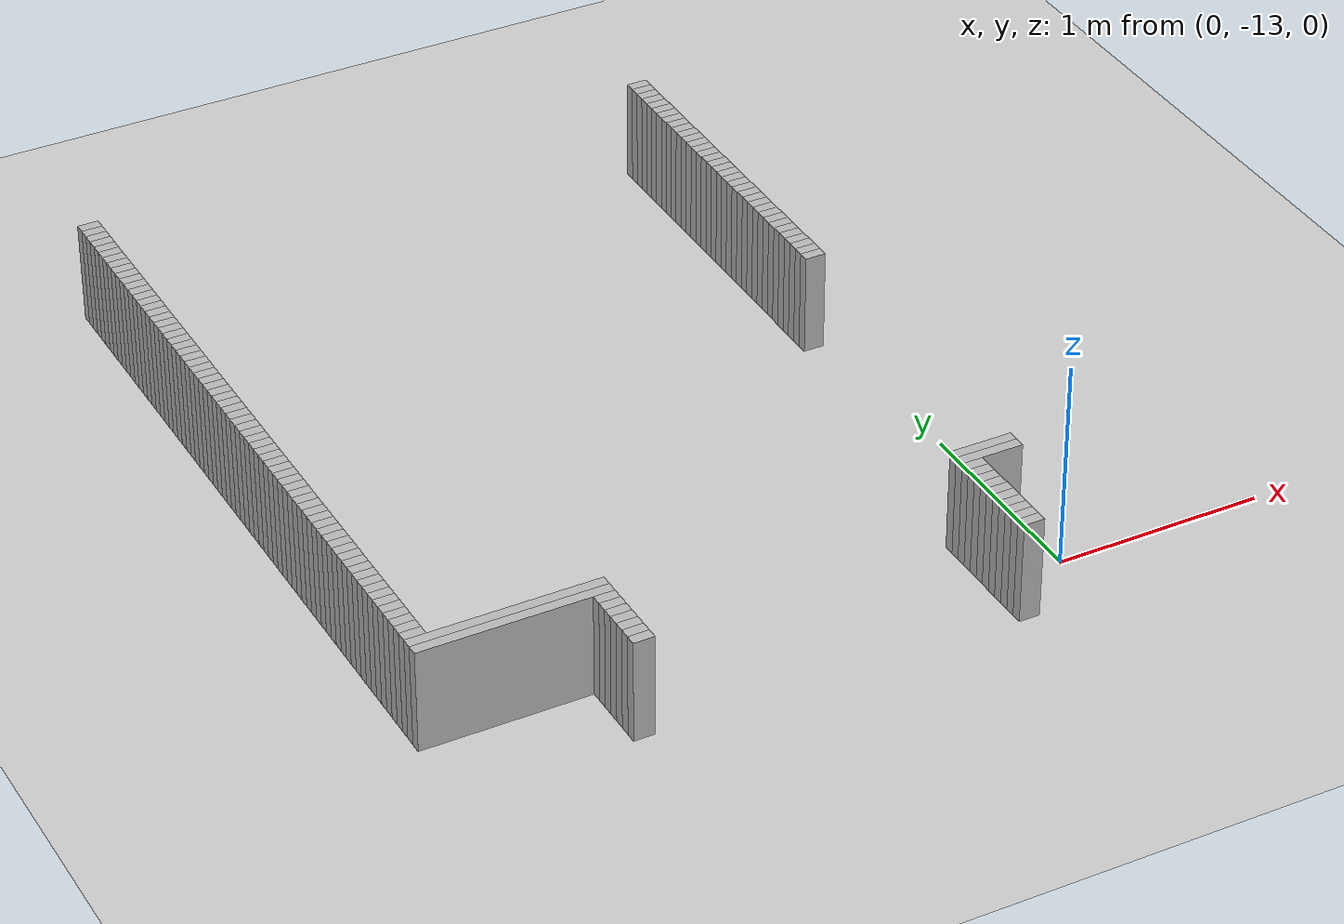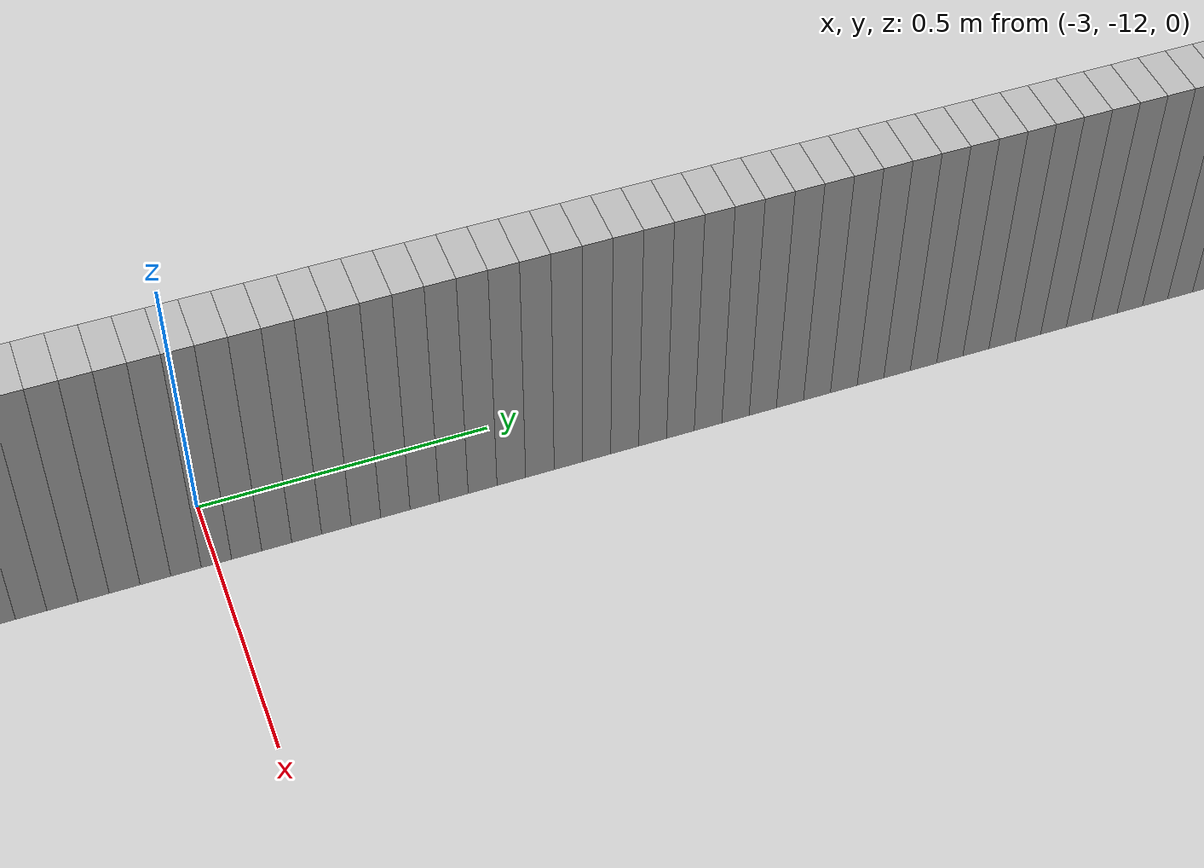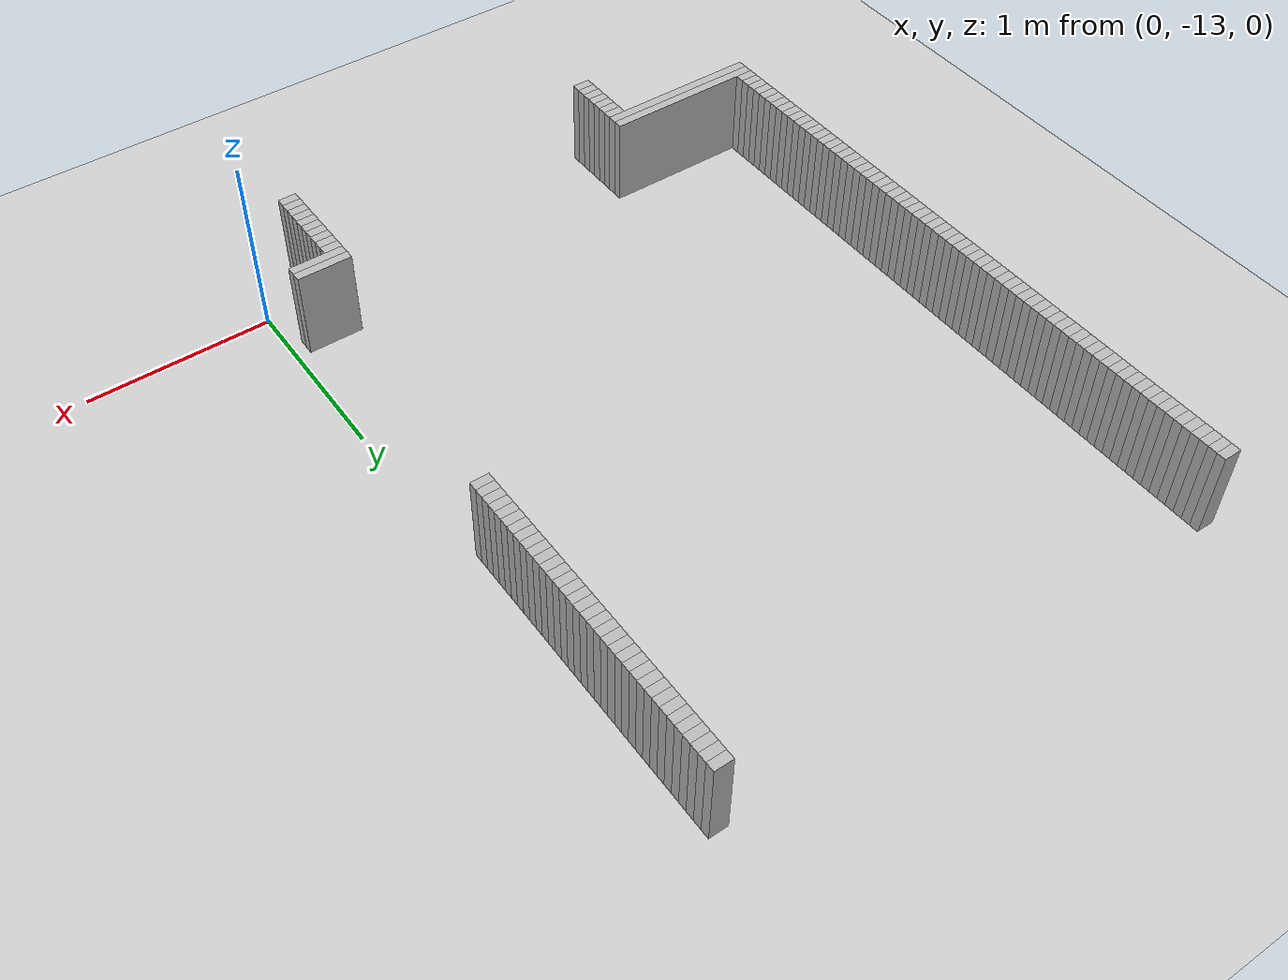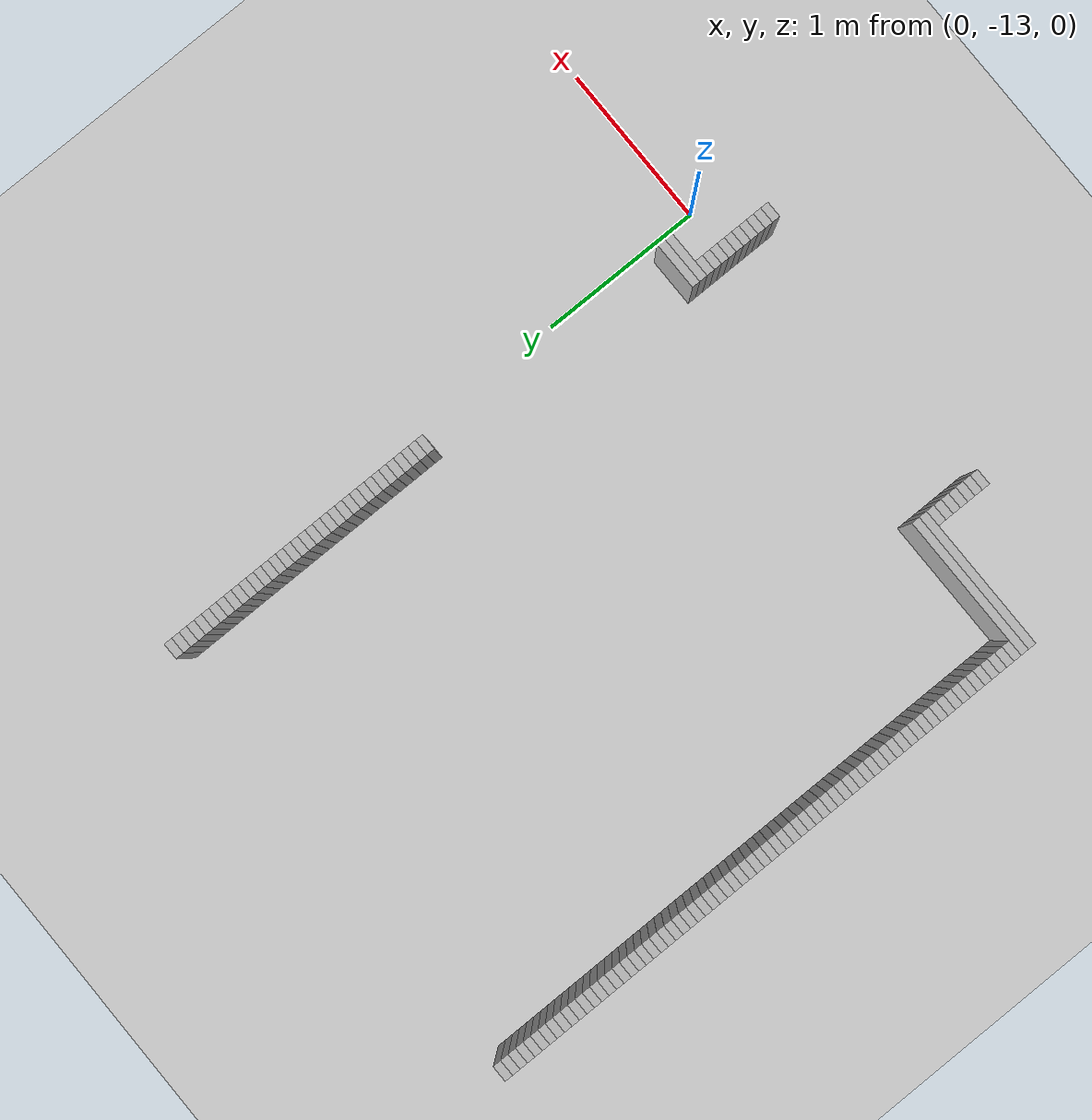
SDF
<sdf version="1.6">
 <world name="optimized_map_world">
  <include><uri>model://sun</uri></include>
  <include><uri>model://ground_plane</uri></include>
  <model name="obstacle_774">
   <static>true</static>
   <link name="link">
    <collision name="collision"><geometry><box><size>0.1 0.05 0.5</size></box></geometry></collision>
    <visual name="visual"><geometry><box><size>0.1 0.05 0.5</size></box></geometry></visual>
   </link>
   <pose>-2.924999999999999 -9.3 0.25 0 0 0</pose>
  </model>
  <model name="obstacle_778">
   <static>true</static>
   <link name="link">
    <collision name="collision"><geometry><box><size>0.1 0.05 0.5</size></box></geometry></collision>
    <visual name="visual"><geometry><box><size>0.1 0.05 0.5</size></box></geometry></visual>
   </link>
   <pose>-2.924999999999999 -9.35 0.25 0 0 0</pose>
  </model>
  <model name="obstacle_779">
   <static>true</static>
   <link name="link">
    <collision name="collision"><geometry><box><size>0.1 0.05 0.5</size></box></geometry></collision>
    <visual name="visual"><geometry><box><size>0.1 0.05 0.5</size></box></geometry></visual>
   </link>
   <pose>-0.125 -9.35 0.25 0 0 0</pose>
  </model>
  <model name="obstacle_782">
   <static>true</static>
   <link name="link">
    <collision name="collision"><geometry><box><size>0.1 0.05 0.5</size></box></geometry></collision>
    <visual name="visual"><geometry><box><size>0.1 0.05 0.5</size></box></geometry></visual>
   </link>
   <pose>-2.924999999999999 -9.4 0.25 0 0 0</pose>
  </model>
  <model name="obstacle_783">
   <static>true</static>
   <link name="link">
    <collision name="collision"><geometry><box><size>0.1 0.05 0.5</size></box></geometry></collision>
    <visual name="visual"><geometry><box><size>0.1 0.05 0.5</size></box></geometry></visual>
   </link>
   <pose>-0.125 -9.4 0.25 0 0 0</pose>
  </model>
  <model name="obstacle_786">
   <static>true</static>
   <link name="link">
    <collision name="collision"><geometry><box><size>0.1 0.05 0.5</size></box></geometry></collision>
    <visual name="visual"><geometry><box><size>0.1 0.05 0.5</size></box></geometry></visual>
   </link>
   <pose>-2.924999999999999 -9.45 0.25 0 0 0</pose>
  </model>
  <model name="obstacle_787">
   <static>true</static>
   <link name="link">
    <collision name="collision"><geometry><box><size>0.1 0.05 0.5</size></box></geometry></collision>
    <visual name="visual"><geometry><box><size>0.1 0.05 0.5</size></box></geometry></visual>
   </link>
   <pose>-0.125 -9.45 0.25 0 0 0</pose>
  </model>
  <model name="obstacle_790">
   <static>true</static>
   <link name="link">
    <collision name="collision"><geometry><box><size>0.1 0.05 0.5</size></box></geometry></collision>
    <visual name="visual"><geometry><box><size>0.1 0.05 0.5</size></box></geometry></visual>
   </link>
   <pose>-2.924999999999999 -9.5 0.25 0 0 0</pose>
  </model>
  <model name="obstacle_791">
   <static>true</static>
   <link name="link">
    <collision name="collision"><geometry><box><size>0.1 0.05 0.5</size></box></geometry></collision>
    <visual name="visual"><geometry><box><size>0.1 0.05 0.5</size></box></geometry></visual>
   </link>
   <pose>-0.125 -9.5 0.25 0 0 0</pose>
  </model>
  <model name="obstacle_794">
   <static>true</static>
   <link name="link">
    <collision name="collision"><geometry><box><size>0.1 0.05 0.5</size></box></geometry></collision>
    <visual name="visual"><geometry><box><size>0.1 0.05 0.5</size></box></geometry></visual>
   </link>
   <pose>-2.924999999999999 -9.55 0.25 0 0 0</pose>
  </model>
  <model name="obstacle_795">
   <static>true</static>
   <link name="link">
    <collision name="collision"><geometry><box><size>0.1 0.05 0.5</size></box></geometry></collision>
    <visual name="visual"><geometry><box><size>0.1 0.05 0.5</size></box></geometry></visual>
   </link>
   <pose>-0.125 -9.55 0.25 0 0 0</pose>
  </model>
  <model name="obstacle_798">
   <static>true</static>
   <link name="link">
    <collision name="collision"><geometry><box><size>0.1 0.05 0.5</size></box></geometry></collision>
    <visual name="visual"><geometry><box><size>0.1 0.05 0.5</size></box></geometry></visual>
   </link>
   <pose>-2.924999999999999 -9.6 0.25 0 0 0</pose>
  </model>
  <model name="obstacle_799">
   <static>true</static>
   <link name="link">
    <collision name="collision"><geometry><box><size>0.1 0.05 0.5</size></box></geometry></collision>
    <visual name="visual"><geometry><box><size>0.1 0.05 0.5</size></box></geometry></visual>
   </link>
   <pose>-0.125 -9.6 0.25 0 0 0</pose>
  </model>
  <model name="obstacle_802">
   <static>true</static>
   <link name="link">
    <collision name="collision"><geometry><box><size>0.1 0.05 0.5</size></box></geometry></collision>
    <visual name="visual"><geometry><box><size>0.1 0.05 0.5</size></box></geometry></visual>
   </link>
   <pose>-2.924999999999999 -9.65 0.25 0 0 0</pose>
  </model>
  <model name="obstacle_803">
   <static>true</static>
   <link name="link">
    <collision name="collision"><geometry><box><size>0.1 0.05 0.5</size></box></geometry></collision>
    <visual name="visual"><geometry><box><size>0.1 0.05 0.5</size></box></geometry></visual>
   </link>
   <pose>-0.125 -9.65 0.25 0 0 0</pose>
  </model>
  <model name="obstacle_806">
   <static>true</static>
   <link name="link">
    <collision name="collision"><geometry><box><size>0.1 0.05 0.5</size></box></geometry></collision>
    <visual name="visual"><geometry><box><size>0.1 0.05 0.5</size></box></geometry></visual>
   </link>
   <pose>-2.924999999999999 -9.7 0.25 0 0 0</pose>
  </model>
  <model name="obstacle_807">
   <static>true</static>
   <link name="link">
    <collision name="collision"><geometry><box><size>0.1 0.05 0.5</size></box></geometry></collision>
    <visual name="visual"><geometry><box><size>0.1 0.05 0.5</size></box></geometry></visual>
   </link>
   <pose>-0.125 -9.7 0.25 0 0 0</pose>
  </model>
  <model name="obstacle_810">
   <static>true</static>
   <link name="link">
    <collision name="collision"><geometry><box><size>0.1 0.05 0.5</size></box></geometry></collision>
    <visual name="visual"><geometry><box><size>0.1 0.05 0.5</size></box></geometry></visual>
   </link>
   <pose>-2.924999999999999 -9.75 0.25 0 0 0</pose>
  </model>
  <model name="obstacle_811">
   <static>true</static>
   <link name="link">
    <collision name="collision"><geometry><box><size>0.1 0.05 0.5</size></box></geometry></collision>
    <visual name="visual"><geometry><box><size>0.1 0.05 0.5</size></box></geometry></visual>
   </link>
   <pose>-0.125 -9.75 0.25 0 0 0</pose>
  </model>
  <model name="obstacle_814">
   <static>true</static>
   <link name="link">
    <collision name="collision"><geometry><box><size>0.1 0.05 0.5</size></box></geometry></collision>
    <visual name="visual"><geometry><box><size>0.1 0.05 0.5</size></box></geometry></visual>
   </link>
   <pose>-2.924999999999999 -9.8 0.25 0 0 0</pose>
  </model>
  <model name="obstacle_815">
   <static>true</static>
   <link name="link">
    <collision name="collision"><geometry><box><size>0.1 0.05 0.5</size></box></geometry></collision>
    <visual name="visual"><geometry><box><size>0.1 0.05 0.5</size></box></geometry></visual>
   </link>
   <pose>-0.125 -9.8 0.25 0 0 0</pose>
  </model>
  <model name="obstacle_818">
   <static>true</static>
   <link name="link">
    <collision name="collision"><geometry><box><size>0.1 0.05 0.5</size></box></geometry></collision>
    <visual name="visual"><geometry><box><size>0.1 0.05 0.5</size></box></geometry></visual>
   </link>
   <pose>-2.924999999999999 -9.85 0.25 0 0 0</pose>
  </model>
  <model name="obstacle_819">
   <static>true</static>
   <link name="link">
    <collision name="collision"><geometry><box><size>0.1 0.05 0.5</size></box></geometry></collision>
    <visual name="visual"><geometry><box><size>0.1 0.05 0.5</size></box></geometry></visual>
   </link>
   <pose>-0.125 -9.85 0.25 0 0 0</pose>
  </model>
  <model name="obstacle_822">
   <static>true</static>
   <link name="link">
    <collision name="collision"><geometry><box><size>0.1 0.05 0.5</size></box></geometry></collision>
    <visual name="visual"><geometry><box><size>0.1 0.05 0.5</size></box></geometry></visual>
   </link>
   <pose>-2.924999999999999 -9.9 0.25 0 0 0</pose>
  </model>
  <model name="obstacle_823">
   <static>true</static>
   <link name="link">
    <collision name="collision"><geometry><box><size>0.1 0.05 0.5</size></box></geometry></collision>
    <visual name="visual"><geometry><box><size>0.1 0.05 0.5</size></box></geometry></visual>
   </link>
   <pose>-0.125 -9.9 0.25 0 0 0</pose>
  </model>
  <model name="obstacle_826">
   <static>true</static>
   <link name="link">
    <collision name="collision"><geometry><box><size>0.1 0.05 0.5</size></box></geometry></collision>
    <visual name="visual"><geometry><box><size>0.1 0.05 0.5</size></box></geometry></visual>
   </link>
   <pose>-2.924999999999999 -9.95 0.25 0 0 0</pose>
  </model>
  <model name="obstacle_827">
   <static>true</static>
   <link name="link">
    <collision name="collision"><geometry><box><size>0.1 0.05 0.5</size></box></geometry></collision>
    <visual name="visual"><geometry><box><size>0.1 0.05 0.5</size></box></geometry></visual>
   </link>
   <pose>-0.125 -9.95 0.25 0 0 0</pose>
  </model>
  <model name="obstacle_830">
   <static>true</static>
   <link name="link">
    <collision name="collision"><geometry><box><size>0.1 0.05 0.5</size></box></geometry></collision>
    <visual name="visual"><geometry><box><size>0.1 0.05 0.5</size></box></geometry></visual>
   </link>
   <pose>-2.924999999999999 -10.0 0.25 0 0 0</pose>
  </model>
  <model name="obstacle_831">
   <static>true</static>
   <link name="link">
    <collision name="collision"><geometry><box><size>0.1 0.05 0.5</size></box></geometry></collision>
    <visual name="visual"><geometry><box><size>0.1 0.05 0.5</size></box></geometry></visual>
   </link>
   <pose>-0.125 -10.0 0.25 0 0 0</pose>
  </model>
  <model name="obstacle_834">
   <static>true</static>
   <link name="link">
    <collision name="collision"><geometry><box><size>0.1 0.05 0.5</size></box></geometry></collision>
    <visual name="visual"><geometry><box><size>0.1 0.05 0.5</size></box></geometry></visual>
   </link>
   <pose>-2.924999999999999 -10.05 0.25 0 0 0</pose>
  </model>
  <model name="obstacle_835">
   <static>true</static>
   <link name="link">
    <collision name="collision"><geometry><box><size>0.1 0.05 0.5</size></box></geometry></collision>
    <visual name="visual"><geometry><box><size>0.1 0.05 0.5</size></box></geometry></visual>
   </link>
   <pose>-0.125 -10.05 0.25 0 0 0</pose>
  </model>
  <model name="obstacle_838">
   <static>true</static>
   <link name="link">
    <collision name="collision"><geometry><box><size>0.1 0.05 0.5</size></box></geometry></collision>
    <visual name="visual"><geometry><box><size>0.1 0.05 0.5</size></box></geometry></visual>
   </link>
   <pose>-2.924999999999999 -10.1 0.25 0 0 0</pose>
  </model>
  <model name="obstacle_839">
   <static>true</static>
   <link name="link">
    <collision name="collision"><geometry><box><size>0.1 0.05 0.5</size></box></geometry></collision>
    <visual name="visual"><geometry><box><size>0.1 0.05 0.5</size></box></geometry></visual>
   </link>
   <pose>-0.125 -10.1 0.25 0 0 0</pose>
  </model>
  <model name="obstacle_842">
   <static>true</static>
   <link name="link">
    <collision name="collision"><geometry><box><size>0.1 0.05 0.5</size></box></geometry></collision>
    <visual name="visual"><geometry><box><size>0.1 0.05 0.5</size></box></geometry></visual>
   </link>
   <pose>-2.924999999999999 -10.15 0.25 0 0 0</pose>
  </model>
  <model name="obstacle_843">
   <static>true</static>
   <link name="link">
    <collision name="collision"><geometry><box><size>0.1 0.05 0.5</size></box></geometry></collision>
    <visual name="visual"><geometry><box><size>0.1 0.05 0.5</size></box></geometry></visual>
   </link>
   <pose>-0.125 -10.15 0.25 0 0 0</pose>
  </model>
  <model name="obstacle_846">
   <static>true</static>
   <link name="link">
    <collision name="collision"><geometry><box><size>0.1 0.05 0.5</size></box></geometry></collision>
    <visual name="visual"><geometry><box><size>0.1 0.05 0.5</size></box></geometry></visual>
   </link>
   <pose>-2.924999999999999 -10.2 0.25 0 0 0</pose>
  </model>
  <model name="obstacle_847">
   <static>true</static>
   <link name="link">
    <collision name="collision"><geometry><box><size>0.1 0.05 0.5</size></box></geometry></collision>
    <visual name="visual"><geometry><box><size>0.1 0.05 0.5</size></box></geometry></visual>
   </link>
   <pose>-0.125 -10.2 0.25 0 0 0</pose>
  </model>
  <model name="obstacle_850">
   <static>true</static>
   <link name="link">
    <collision name="collision"><geometry><box><size>0.1 0.05 0.5</size></box></geometry></collision>
    <visual name="visual"><geometry><box><size>0.1 0.05 0.5</size></box></geometry></visual>
   </link>
   <pose>-2.924999999999999 -10.25 0.25 0 0 0</pose>
  </model>
  <model name="obstacle_851">
   <static>true</static>
   <link name="link">
    <collision name="collision"><geometry><box><size>0.1 0.05 0.5</size></box></geometry></collision>
    <visual name="visual"><geometry><box><size>0.1 0.05 0.5</size></box></geometry></visual>
   </link>
   <pose>-0.125 -10.25 0.25 0 0 0</pose>
  </model>
  <model name="obstacle_854">
   <static>true</static>
   <link name="link">
    <collision name="collision"><geometry><box><size>0.1 0.05 0.5</size></box></geometry></collision>
    <visual name="visual"><geometry><box><size>0.1 0.05 0.5</size></box></geometry></visual>
   </link>
   <pose>-2.924999999999999 -10.3 0.25 0 0 0</pose>
  </model>
  <model name="obstacle_855">
   <static>true</static>
   <link name="link">
    <collision name="collision"><geometry><box><size>0.1 0.05 0.5</size></box></geometry></collision>
    <visual name="visual"><geometry><box><size>0.1 0.05 0.5</size></box></geometry></visual>
   </link>
   <pose>-0.125 -10.3 0.25 0 0 0</pose>
  </model>
  <model name="obstacle_858">
   <static>true</static>
   <link name="link">
    <collision name="collision"><geometry><box><size>0.1 0.05 0.5</size></box></geometry></collision>
    <visual name="visual"><geometry><box><size>0.1 0.05 0.5</size></box></geometry></visual>
   </link>
   <pose>-2.924999999999999 -10.35 0.25 0 0 0</pose>
  </model>
  <model name="obstacle_859">
   <static>true</static>
   <link name="link">
    <collision name="collision"><geometry><box><size>0.1 0.05 0.5</size></box></geometry></collision>
    <visual name="visual"><geometry><box><size>0.1 0.05 0.5</size></box></geometry></visual>
   </link>
   <pose>-0.125 -10.35 0.25 0 0 0</pose>
  </model>
  <model name="obstacle_862">
   <static>true</static>
   <link name="link">
    <collision name="collision"><geometry><box><size>0.1 0.05 0.5</size></box></geometry></collision>
    <visual name="visual"><geometry><box><size>0.1 0.05 0.5</size></box></geometry></visual>
   </link>
   <pose>-2.924999999999999 -10.4 0.25 0 0 0</pose>
  </model>
  <model name="obstacle_863">
   <static>true</static>
   <link name="link">
    <collision name="collision"><geometry><box><size>0.1 0.05 0.5</size></box></geometry></collision>
    <visual name="visual"><geometry><box><size>0.1 0.05 0.5</size></box></geometry></visual>
   </link>
   <pose>-0.125 -10.4 0.25 0 0 0</pose>
  </model>
  <model name="obstacle_866">
   <static>true</static>
   <link name="link">
    <collision name="collision"><geometry><box><size>0.1 0.05 0.5</size></box></geometry></collision>
    <visual name="visual"><geometry><box><size>0.1 0.05 0.5</size></box></geometry></visual>
   </link>
   <pose>-2.924999999999999 -10.45 0.25 0 0 0</pose>
  </model>
  <model name="obstacle_867">
   <static>true</static>
   <link name="link">
    <collision name="collision"><geometry><box><size>0.1 0.05 0.5</size></box></geometry></collision>
    <visual name="visual"><geometry><box><size>0.1 0.05 0.5</size></box></geometry></visual>
   </link>
   <pose>-0.125 -10.45 0.25 0 0 0</pose>
  </model>
  <model name="obstacle_870">
   <static>true</static>
   <link name="link">
    <collision name="collision"><geometry><box><size>0.1 0.05 0.5</size></box></geometry></collision>
    <visual name="visual"><geometry><box><size>0.1 0.05 0.5</size></box></geometry></visual>
   </link>
   <pose>-2.924999999999999 -10.5 0.25 0 0 0</pose>
  </model>
  <model name="obstacle_871">
   <static>true</static>
   <link name="link">
    <collision name="collision"><geometry><box><size>0.1 0.05 0.5</size></box></geometry></collision>
    <visual name="visual"><geometry><box><size>0.1 0.05 0.5</size></box></geometry></visual>
   </link>
   <pose>-0.125 -10.5 0.25 0 0 0</pose>
  </model>
  <model name="obstacle_874">
   <static>true</static>
   <link name="link">
    <collision name="collision"><geometry><box><size>0.1 0.05 0.5</size></box></geometry></collision>
    <visual name="visual"><geometry><box><size>0.1 0.05 0.5</size></box></geometry></visual>
   </link>
   <pose>-2.924999999999999 -10.55 0.25 0 0 0</pose>
  </model>
  <model name="obstacle_875">
   <static>true</static>
   <link name="link">
    <collision name="collision"><geometry><box><size>0.1 0.05 0.5</size></box></geometry></collision>
    <visual name="visual"><geometry><box><size>0.1 0.05 0.5</size></box></geometry></visual>
   </link>
   <pose>-0.125 -10.55 0.25 0 0 0</pose>
  </model>
  <model name="obstacle_878">
   <static>true</static>
   <link name="link">
    <collision name="collision"><geometry><box><size>0.1 0.05 0.5</size></box></geometry></collision>
    <visual name="visual"><geometry><box><size>0.1 0.05 0.5</size></box></geometry></visual>
   </link>
   <pose>-2.924999999999999 -10.6 0.25 0 0 0</pose>
  </model>
  <model name="obstacle_879">
   <static>true</static>
   <link name="link">
    <collision name="collision"><geometry><box><size>0.1 0.05 0.5</size></box></geometry></collision>
    <visual name="visual"><geometry><box><size>0.1 0.05 0.5</size></box></geometry></visual>
   </link>
   <pose>-0.125 -10.6 0.25 0 0 0</pose>
  </model>
  <model name="obstacle_882">
   <static>true</static>
   <link name="link">
    <collision name="collision"><geometry><box><size>0.1 0.05 0.5</size></box></geometry></collision>
    <visual name="visual"><geometry><box><size>0.1 0.05 0.5</size></box></geometry></visual>
   </link>
   <pose>-2.924999999999999 -10.65 0.25 0 0 0</pose>
  </model>
  <model name="obstacle_883">
   <static>true</static>
   <link name="link">
    <collision name="collision"><geometry><box><size>0.1 0.05 0.5</size></box></geometry></collision>
    <visual name="visual"><geometry><box><size>0.1 0.05 0.5</size></box></geometry></visual>
   </link>
   <pose>-0.125 -10.65 0.25 0 0 0</pose>
  </model>
  <model name="obstacle_886">
   <static>true</static>
   <link name="link">
    <collision name="collision"><geometry><box><size>0.1 0.05 0.5</size></box></geometry></collision>
    <visual name="visual"><geometry><box><size>0.1 0.05 0.5</size></box></geometry></visual>
   </link>
   <pose>-2.924999999999999 -10.7 0.25 0 0 0</pose>
  </model>
  <model name="obstacle_887">
   <static>true</static>
   <link name="link">
    <collision name="collision"><geometry><box><size>0.1 0.05 0.5</size></box></geometry></collision>
    <visual name="visual"><geometry><box><size>0.1 0.05 0.5</size></box></geometry></visual>
   </link>
   <pose>-0.125 -10.7 0.25 0 0 0</pose>
  </model>
  <model name="obstacle_890">
   <static>true</static>
   <link name="link">
    <collision name="collision"><geometry><box><size>0.1 0.05 0.5</size></box></geometry></collision>
    <visual name="visual"><geometry><box><size>0.1 0.05 0.5</size></box></geometry></visual>
   </link>
   <pose>-2.924999999999999 -10.75 0.25 0 0 0</pose>
  </model>
  <model name="obstacle_891">
   <static>true</static>
   <link name="link">
    <collision name="collision"><geometry><box><size>0.1 0.05 0.5</size></box></geometry></collision>
    <visual name="visual"><geometry><box><size>0.1 0.05 0.5</size></box></geometry></visual>
   </link>
   <pose>-0.125 -10.75 0.25 0 0 0</pose>
  </model>
  <model name="obstacle_894">
   <static>true</static>
   <link name="link">
    <collision name="collision"><geometry><box><size>0.1 0.05 0.5</size></box></geometry></collision>
    <visual name="visual"><geometry><box><size>0.1 0.05 0.5</size></box></geometry></visual>
   </link>
   <pose>-2.924999999999999 -10.8 0.25 0 0 0</pose>
  </model>
  <model name="obstacle_895">
   <static>true</static>
   <link name="link">
    <collision name="collision"><geometry><box><size>0.1 0.05 0.5</size></box></geometry></collision>
    <visual name="visual"><geometry><box><size>0.1 0.05 0.5</size></box></geometry></visual>
   </link>
   <pose>-0.125 -10.8 0.25 0 0 0</pose>
  </model>
  <model name="obstacle_898">
   <static>true</static>
   <link name="link">
    <collision name="collision"><geometry><box><size>0.1 0.05 0.5</size></box></geometry></collision>
    <visual name="visual"><geometry><box><size>0.1 0.05 0.5</size></box></geometry></visual>
   </link>
   <pose>-2.924999999999999 -10.85 0.25 0 0 0</pose>
  </model>
  <model name="obstacle_899">
   <static>true</static>
   <link name="link">
    <collision name="collision"><geometry><box><size>0.1 0.05 0.5</size></box></geometry></collision>
    <visual name="visual"><geometry><box><size>0.1 0.05 0.5</size></box></geometry></visual>
   </link>
   <pose>-0.125 -10.85 0.25 0 0 0</pose>
  </model>
  <model name="obstacle_902">
   <static>true</static>
   <link name="link">
    <collision name="collision"><geometry><box><size>0.1 0.05 0.5</size></box></geometry></collision>
    <visual name="visual"><geometry><box><size>0.1 0.05 0.5</size></box></geometry></visual>
   </link>
   <pose>-2.924999999999999 -10.9 0.25 0 0 0</pose>
  </model>
  <model name="obstacle_903">
   <static>true</static>
   <link name="link">
    <collision name="collision"><geometry><box><size>0.1 0.05 0.5</size></box></geometry></collision>
    <visual name="visual"><geometry><box><size>0.1 0.05 0.5</size></box></geometry></visual>
   </link>
   <pose>-0.125 -10.9 0.25 0 0 0</pose>
  </model>
  <model name="obstacle_906">
   <static>true</static>
   <link name="link">
    <collision name="collision"><geometry><box><size>0.1 0.05 0.5</size></box></geometry></collision>
    <visual name="visual"><geometry><box><size>0.1 0.05 0.5</size></box></geometry></visual>
   </link>
   <pose>-2.924999999999999 -10.950000000000001 0.25 0 0 0</pose>
  </model>
  <model name="obstacle_907">
   <static>true</static>
   <link name="link">
    <collision name="collision"><geometry><box><size>0.1 0.05 0.5</size></box></geometry></collision>
    <visual name="visual"><geometry><box><size>0.1 0.05 0.5</size></box></geometry></visual>
   </link>
   <pose>-0.125 -10.950000000000001 0.25 0 0 0</pose>
  </model>
  <model name="obstacle_910">
   <static>true</static>
   <link name="link">
    <collision name="collision"><geometry><box><size>0.1 0.05 0.5</size></box></geometry></collision>
    <visual name="visual"><geometry><box><size>0.1 0.05 0.5</size></box></geometry></visual>
   </link>
   <pose>-2.924999999999999 -11.0 0.25 0 0 0</pose>
  </model>
  <model name="obstacle_911">
   <static>true</static>
   <link name="link">
    <collision name="collision"><geometry><box><size>0.1 0.05 0.5</size></box></geometry></collision>
    <visual name="visual"><geometry><box><size>0.1 0.05 0.5</size></box></geometry></visual>
   </link>
   <pose>-0.125 -11.0 0.25 0 0 0</pose>
  </model>
  <model name="obstacle_914">
   <static>true</static>
   <link name="link">
    <collision name="collision"><geometry><box><size>0.1 0.05 0.5</size></box></geometry></collision>
    <visual name="visual"><geometry><box><size>0.1 0.05 0.5</size></box></geometry></visual>
   </link>
   <pose>-2.924999999999999 -11.05 0.25 0 0 0</pose>
  </model>
  <model name="obstacle_915">
   <static>true</static>
   <link name="link">
    <collision name="collision"><geometry><box><size>0.1 0.05 0.5</size></box></geometry></collision>
    <visual name="visual"><geometry><box><size>0.1 0.05 0.5</size></box></geometry></visual>
   </link>
   <pose>-0.125 -11.05 0.25 0 0 0</pose>
  </model>
  <model name="obstacle_918">
   <static>true</static>
   <link name="link">
    <collision name="collision"><geometry><box><size>0.1 0.05 0.5</size></box></geometry></collision>
    <visual name="visual"><geometry><box><size>0.1 0.05 0.5</size></box></geometry></visual>
   </link>
   <pose>-2.924999999999999 -11.1 0.25 0 0 0</pose>
  </model>
  <model name="obstacle_922">
   <static>true</static>
   <link name="link">
    <collision name="collision"><geometry><box><size>0.1 0.05 0.5</size></box></geometry></collision>
    <visual name="visual"><geometry><box><size>0.1 0.05 0.5</size></box></geometry></visual>
   </link>
   <pose>-2.924999999999999 -11.15 0.25 0 0 0</pose>
  </model>
  <model name="obstacle_926">
   <static>true</static>
   <link name="link">
    <collision name="collision"><geometry><box><size>0.1 0.05 0.5</size></box></geometry></collision>
    <visual name="visual"><geometry><box><size>0.1 0.05 0.5</size></box></geometry></visual>
   </link>
   <pose>-2.924999999999999 -11.200000000000001 0.25 0 0 0</pose>
  </model>
  <model name="obstacle_930">
   <static>true</static>
   <link name="link">
    <collision name="collision"><geometry><box><size>0.1 0.05 0.5</size></box></geometry></collision>
    <visual name="visual"><geometry><box><size>0.1 0.05 0.5</size></box></geometry></visual>
   </link>
   <pose>-2.924999999999999 -11.25 0.25 0 0 0</pose>
  </model>
  <model name="obstacle_934">
   <static>true</static>
   <link name="link">
    <collision name="collision"><geometry><box><size>0.1 0.05 0.5</size></box></geometry></collision>
    <visual name="visual"><geometry><box><size>0.1 0.05 0.5</size></box></geometry></visual>
   </link>
   <pose>-2.924999999999999 -11.3 0.25 0 0 0</pose>
  </model>
  <model name="obstacle_938">
   <static>true</static>
   <link name="link">
    <collision name="collision"><geometry><box><size>0.1 0.05 0.5</size></box></geometry></collision>
    <visual name="visual"><geometry><box><size>0.1 0.05 0.5</size></box></geometry></visual>
   </link>
   <pose>-2.924999999999999 -11.35 0.25 0 0 0</pose>
  </model>
  <model name="obstacle_942">
   <static>true</static>
   <link name="link">
    <collision name="collision"><geometry><box><size>0.1 0.05 0.5</size></box></geometry></collision>
    <visual name="visual"><geometry><box><size>0.1 0.05 0.5</size></box></geometry></visual>
   </link>
   <pose>-2.924999999999999 -11.4 0.25 0 0 0</pose>
  </model>
  <model name="obstacle_946">
   <static>true</static>
   <link name="link">
    <collision name="collision"><geometry><box><size>0.1 0.05 0.5</size></box></geometry></collision>
    <visual name="visual"><geometry><box><size>0.1 0.05 0.5</size></box></geometry></visual>
   </link>
   <pose>-2.924999999999999 -11.450000000000001 0.25 0 0 0</pose>
  </model>
  <model name="obstacle_950">
   <static>true</static>
   <link name="link">
    <collision name="collision"><geometry><box><size>0.1 0.05 0.5</size></box></geometry></collision>
    <visual name="visual"><geometry><box><size>0.1 0.05 0.5</size></box></geometry></visual>
   </link>
   <pose>-2.924999999999999 -11.5 0.25 0 0 0</pose>
  </model>
  <model name="obstacle_954">
   <static>true</static>
   <link name="link">
    <collision name="collision"><geometry><box><size>0.1 0.05 0.5</size></box></geometry></collision>
    <visual name="visual"><geometry><box><size>0.1 0.05 0.5</size></box></geometry></visual>
   </link>
   <pose>-2.924999999999999 -11.55 0.25 0 0 0</pose>
  </model>
  <model name="obstacle_958">
   <static>true</static>
   <link name="link">
    <collision name="collision"><geometry><box><size>0.1 0.05 0.5</size></box></geometry></collision>
    <visual name="visual"><geometry><box><size>0.1 0.05 0.5</size></box></geometry></visual>
   </link>
   <pose>-2.924999999999999 -11.6 0.25 0 0 0</pose>
  </model>
  <model name="obstacle_962">
   <static>true</static>
   <link name="link">
    <collision name="collision"><geometry><box><size>0.1 0.05 0.5</size></box></geometry></collision>
    <visual name="visual"><geometry><box><size>0.1 0.05 0.5</size></box></geometry></visual>
   </link>
   <pose>-2.924999999999999 -11.65 0.25 0 0 0</pose>
  </model>
  <model name="obstacle_966">
   <static>true</static>
   <link name="link">
    <collision name="collision"><geometry><box><size>0.1 0.05 0.5</size></box></geometry></collision>
    <visual name="visual"><geometry><box><size>0.1 0.05 0.5</size></box></geometry></visual>
   </link>
   <pose>-2.924999999999999 -11.700000000000001 0.25 0 0 0</pose>
  </model>
  <model name="obstacle_970">
   <static>true</static>
   <link name="link">
    <collision name="collision"><geometry><box><size>0.1 0.05 0.5</size></box></geometry></collision>
    <visual name="visual"><geometry><box><size>0.1 0.05 0.5</size></box></geometry></visual>
   </link>
   <pose>-2.924999999999999 -11.75 0.25 0 0 0</pose>
  </model>
  <model name="obstacle_974">
   <static>true</static>
   <link name="link">
    <collision name="collision"><geometry><box><size>0.1 0.05 0.5</size></box></geometry></collision>
    <visual name="visual"><geometry><box><size>0.1 0.05 0.5</size></box></geometry></visual>
   </link>
   <pose>-2.924999999999999 -11.8 0.25 0 0 0</pose>
  </model>
  <model name="obstacle_978">
   <static>true</static>
   <link name="link">
    <collision name="collision"><geometry><box><size>0.1 0.05 0.5</size></box></geometry></collision>
    <visual name="visual"><geometry><box><size>0.1 0.05 0.5</size></box></geometry></visual>
   </link>
   <pose>-2.924999999999999 -11.85 0.25 0 0 0</pose>
  </model>
  <model name="obstacle_982">
   <static>true</static>
   <link name="link">
    <collision name="collision"><geometry><box><size>0.1 0.05 0.5</size></box></geometry></collision>
    <visual name="visual"><geometry><box><size>0.1 0.05 0.5</size></box></geometry></visual>
   </link>
   <pose>-2.924999999999999 -11.9 0.25 0 0 0</pose>
  </model>
  <model name="obstacle_986">
   <static>true</static>
   <link name="link">
    <collision name="collision"><geometry><box><size>0.1 0.05 0.5</size></box></geometry></collision>
    <visual name="visual"><geometry><box><size>0.1 0.05 0.5</size></box></geometry></visual>
   </link>
   <pose>-2.924999999999999 -11.950000000000001 0.25 0 0 0</pose>
  </model>
  <model name="obstacle_990">
   <static>true</static>
   <link name="link">
    <collision name="collision"><geometry><box><size>0.1 0.05 0.5</size></box></geometry></collision>
    <visual name="visual"><geometry><box><size>0.1 0.05 0.5</size></box></geometry></visual>
   </link>
   <pose>-2.924999999999999 -12.0 0.25 0 0 0</pose>
  </model>
  <model name="obstacle_994">
   <static>true</static>
   <link name="link">
    <collision name="collision"><geometry><box><size>0.1 0.05 0.5</size></box></geometry></collision>
    <visual name="visual"><geometry><box><size>0.1 0.05 0.5</size></box></geometry></visual>
   </link>
   <pose>-2.924999999999999 -12.05 0.25 0 0 0</pose>
  </model>
  <model name="obstacle_998">
   <static>true</static>
   <link name="link">
    <collision name="collision"><geometry><box><size>0.1 0.05 0.5</size></box></geometry></collision>
    <visual name="visual"><geometry><box><size>0.1 0.05 0.5</size></box></geometry></visual>
   </link>
   <pose>-2.924999999999999 -12.1 0.25 0 0 0</pose>
  </model>
  <model name="obstacle_1002">
   <static>true</static>
   <link name="link">
    <collision name="collision"><geometry><box><size>0.1 0.05 0.5</size></box></geometry></collision>
    <visual name="visual"><geometry><box><size>0.1 0.05 0.5</size></box></geometry></visual>
   </link>
   <pose>-2.924999999999999 -12.15 0.25 0 0 0</pose>
  </model>
  <model name="obstacle_1006">
   <static>true</static>
   <link name="link">
    <collision name="collision"><geometry><box><size>0.1 0.05 0.5</size></box></geometry></collision>
    <visual name="visual"><geometry><box><size>0.1 0.05 0.5</size></box></geometry></visual>
   </link>
   <pose>-2.924999999999999 -12.200000000000001 0.25 0 0 0</pose>
  </model>
  <model name="obstacle_1010">
   <static>true</static>
   <link name="link">
    <collision name="collision"><geometry><box><size>0.1 0.05 0.5</size></box></geometry></collision>
    <visual name="visual"><geometry><box><size>0.1 0.05 0.5</size></box></geometry></visual>
   </link>
   <pose>-2.924999999999999 -12.25 0.25 0 0 0</pose>
  </model>
  <model name="obstacle_1014">
   <static>true</static>
   <link name="link">
    <collision name="collision"><geometry><box><size>0.1 0.05 0.5</size></box></geometry></collision>
    <visual name="visual"><geometry><box><size>0.1 0.05 0.5</size></box></geometry></visual>
   </link>
   <pose>-2.924999999999999 -12.3 0.25 0 0 0</pose>
  </model>
  <model name="obstacle_1018">
   <static>true</static>
   <link name="link">
    <collision name="collision"><geometry><box><size>0.1 0.05 0.5</size></box></geometry></collision>
    <visual name="visual"><geometry><box><size>0.1 0.05 0.5</size></box></geometry></visual>
   </link>
   <pose>-2.924999999999999 -12.350000000000001 0.25 0 0 0</pose>
  </model>
  <model name="obstacle_1022">
   <static>true</static>
   <link name="link">
    <collision name="collision"><geometry><box><size>0.1 0.05 0.5</size></box></geometry></collision>
    <visual name="visual"><geometry><box><size>0.1 0.05 0.5</size></box></geometry></visual>
   </link>
   <pose>-2.924999999999999 -12.4 0.25 0 0 0</pose>
  </model>
  <model name="obstacle_1026">
   <static>true</static>
   <link name="link">
    <collision name="collision"><geometry><box><size>0.1 0.05 0.5</size></box></geometry></collision>
    <visual name="visual"><geometry><box><size>0.1 0.05 0.5</size></box></geometry></visual>
   </link>
   <pose>-2.924999999999999 -12.45 0.25 0 0 0</pose>
  </model>
  <model name="obstacle_1030">
   <static>true</static>
   <link name="link">
    <collision name="collision"><geometry><box><size>0.1 0.05 0.5</size></box></geometry></collision>
    <visual name="visual"><geometry><box><size>0.1 0.05 0.5</size></box></geometry></visual>
   </link>
   <pose>-2.924999999999999 -12.5 0.25 0 0 0</pose>
  </model>
  <model name="obstacle_1034">
   <static>true</static>
   <link name="link">
    <collision name="collision"><geometry><box><size>0.1 0.05 0.5</size></box></geometry></collision>
    <visual name="visual"><geometry><box><size>0.1 0.05 0.5</size></box></geometry></visual>
   </link>
   <pose>-2.924999999999999 -12.55 0.25 0 0 0</pose>
  </model>
  <model name="obstacle_1038">
   <static>true</static>
   <link name="link">
    <collision name="collision"><geometry><box><size>0.1 0.05 0.5</size></box></geometry></collision>
    <visual name="visual"><geometry><box><size>0.1 0.05 0.5</size></box></geometry></visual>
   </link>
   <pose>-2.924999999999999 -12.600000000000001 0.25 0 0 0</pose>
  </model>
  <model name="obstacle_1042">
   <static>true</static>
   <link name="link">
    <collision name="collision"><geometry><box><size>0.1 0.05 0.5</size></box></geometry></collision>
    <visual name="visual"><geometry><box><size>0.1 0.05 0.5</size></box></geometry></visual>
   </link>
   <pose>-2.924999999999999 -12.65 0.25 0 0 0</pose>
  </model>
  <model name="obstacle_1046">
   <static>true</static>
   <link name="link">
    <collision name="collision"><geometry><box><size>0.1 0.05 0.5</size></box></geometry></collision>
    <visual name="visual"><geometry><box><size>0.1 0.05 0.5</size></box></geometry></visual>
   </link>
   <pose>-2.924999999999999 -12.7 0.25 0 0 0</pose>
  </model>
  <model name="obstacle_1047">
   <static>true</static>
   <link name="link">
    <collision name="collision">
     <geometry><box><size>0.30000000000000004 0.05 0.5</size></box></geometry>
    </collision>
    <visual name="visual"><geometry><box><size>0.30000000000000004 0.05 0.5</size></box></geometry></visual>
   </link>
   <pose>-0.22499999999999787 -12.7 0.25 0 0 0</pose>
  </model>
  <model name="obstacle_1050">
   <static>true</static>
   <link name="link">
    <collision name="collision"><geometry><box><size>0.1 0.05 0.5</size></box></geometry></collision>
    <visual name="visual"><geometry><box><size>0.1 0.05 0.5</size></box></geometry></visual>
   </link>
   <pose>-2.924999999999999 -12.75 0.25 0 0 0</pose>
  </model>
  <model name="obstacle_1051">
   <static>true</static>
   <link name="link">
    <collision name="collision">
     <geometry><box><size>0.30000000000000004 0.05 0.5</size></box></geometry>
    </collision>
    <visual name="visual"><geometry><box><size>0.30000000000000004 0.05 0.5</size></box></geometry></visual>
   </link>
   <pose>-0.22499999999999787 -12.75 0.25 0 0 0</pose>
  </model>
  <model name="obstacle_1054">
   <static>true</static>
   <link name="link">
    <collision name="collision"><geometry><box><size>0.9 0.05 0.5</size></box></geometry></collision>
    <visual name="visual"><geometry><box><size>0.9 0.05 0.5</size></box></geometry></visual>
   </link>
   <pose>-2.5249999999999986 -12.8 0.25 0 0 0</pose>
  </model>
  <model name="obstacle_1055">
   <static>true</static>
   <link name="link">
    <collision name="collision"><geometry><box><size>0.1 0.05 0.5</size></box></geometry></collision>
    <visual name="visual"><geometry><box><size>0.1 0.05 0.5</size></box></geometry></visual>
   </link>
   <pose>-0.3249999999999993 -12.8 0.25 0 0 0</pose>
  </model>
  <model name="obstacle_1058">
   <static>true</static>
   <link name="link">
    <collision name="collision"><geometry><box><size>0.9 0.05 0.5</size></box></geometry></collision>
    <visual name="visual"><geometry><box><size>0.9 0.05 0.5</size></box></geometry></visual>
   </link>
   <pose>-2.5249999999999986 -12.850000000000001 0.25 0 0 0</pose>
  </model>
  <model name="obstacle_1059">
   <static>true</static>
   <link name="link">
    <collision name="collision"><geometry><box><size>0.1 0.05 0.5</size></box></geometry></collision>
    <visual name="visual"><geometry><box><size>0.1 0.05 0.5</size></box></geometry></visual>
   </link>
   <pose>-0.3249999999999993 -12.850000000000001 0.25 0 0 0</pose>
  </model>
  <model name="obstacle_1062">
   <static>true</static>
   <link name="link">
    <collision name="collision"><geometry><box><size>0.1 0.05 0.5</size></box></geometry></collision>
    <visual name="visual"><geometry><box><size>0.1 0.05 0.5</size></box></geometry></visual>
   </link>
   <pose>-2.1249999999999982 -12.9 0.25 0 0 0</pose>
  </model>
  <model name="obstacle_1063">
   <static>true</static>
   <link name="link">
    <collision name="collision"><geometry><box><size>0.1 0.05 0.5</size></box></geometry></collision>
    <visual name="visual"><geometry><box><size>0.1 0.05 0.5</size></box></geometry></visual>
   </link>
   <pose>-0.3249999999999993 -12.9 0.25 0 0 0</pose>
  </model>
  <model name="obstacle_1066">
   <static>true</static>
   <link name="link">
    <collision name="collision"><geometry><box><size>0.1 0.05 0.5</size></box></geometry></collision>
    <visual name="visual"><geometry><box><size>0.1 0.05 0.5</size></box></geometry></visual>
   </link>
   <pose>-2.1249999999999982 -12.95 0.25 0 0 0</pose>
  </model>
  <model name="obstacle_1067">
   <static>true</static>
   <link name="link">
    <collision name="collision"><geometry><box><size>0.1 0.05 0.5</size></box></geometry></collision>
    <visual name="visual"><geometry><box><size>0.1 0.05 0.5</size></box></geometry></visual>
   </link>
   <pose>-0.3249999999999993 -12.95 0.25 0 0 0</pose>
  </model>
  <model name="obstacle_1070">
   <static>true</static>
   <link name="link">
    <collision name="collision"><geometry><box><size>0.1 0.05 0.5</size></box></geometry></collision>
    <visual name="visual"><geometry><box><size>0.1 0.05 0.5</size></box></geometry></visual>
   </link>
   <pose>-2.1249999999999982 -13.0 0.25 0 0 0</pose>
  </model>
  <model name="obstacle_1071">
   <static>true</static>
   <link name="link">
    <collision name="collision"><geometry><box><size>0.1 0.05 0.5</size></box></geometry></collision>
    <visual name="visual"><geometry><box><size>0.1 0.05 0.5</size></box></geometry></visual>
   </link>
   <pose>-0.3249999999999993 -13.0 0.25 0 0 0</pose>
  </model>
  <model name="obstacle_1074">
   <static>true</static>
   <link name="link">
    <collision name="collision"><geometry><box><size>0.1 0.05 0.5</size></box></geometry></collision>
    <visual name="visual"><geometry><box><size>0.1 0.05 0.5</size></box></geometry></visual>
   </link>
   <pose>-2.1249999999999982 -13.05 0.25 0 0 0</pose>
  </model>
  <model name="obstacle_1075">
   <static>true</static>
   <link name="link">
    <collision name="collision"><geometry><box><size>0.1 0.05 0.5</size></box></geometry></collision>
    <visual name="visual"><geometry><box><size>0.1 0.05 0.5</size></box></geometry></visual>
   </link>
   <pose>-0.3249999999999993 -13.05 0.25 0 0 0</pose>
  </model>
  <model name="obstacle_1078">
   <static>true</static>
   <link name="link">
    <collision name="collision"><geometry><box><size>0.1 0.05 0.5</size></box></geometry></collision>
    <visual name="visual"><geometry><box><size>0.1 0.05 0.5</size></box></geometry></visual>
   </link>
   <pose>-2.1249999999999982 -13.100000000000001 0.25 0 0 0</pose>
  </model>
  <model name="obstacle_1079">
   <static>true</static>
   <link name="link">
    <collision name="collision"><geometry><box><size>0.1 0.05 0.5</size></box></geometry></collision>
    <visual name="visual"><geometry><box><size>0.1 0.05 0.5</size></box></geometry></visual>
   </link>
   <pose>-0.3249999999999993 -13.100000000000001 0.25 0 0 0</pose>
  </model>
  <model name="obstacle_1082">
   <static>true</static>
   <link name="link">
    <collision name="collision"><geometry><box><size>0.1 0.05 0.5</size></box></geometry></collision>
    <visual name="visual"><geometry><box><size>0.1 0.05 0.5</size></box></geometry></visual>
   </link>
   <pose>-2.1249999999999982 -13.15 0.25 0 0 0</pose>
  </model>
  <model name="obstacle_1083">
   <static>true</static>
   <link name="link">
    <collision name="collision"><geometry><box><size>0.1 0.05 0.5</size></box></geometry></collision>
    <visual name="visual"><geometry><box><size>0.1 0.05 0.5</size></box></geometry></visual>
   </link>
   <pose>-0.3249999999999993 -13.15 0.25 0 0 0</pose>
  </model>
  <model name="obstacle_1086">
   <static>true</static>
   <link name="link">
    <collision name="collision"><geometry><box><size>0.1 0.05 0.5</size></box></geometry></collision>
    <visual name="visual"><geometry><box><size>0.1 0.05 0.5</size></box></geometry></visual>
   </link>
   <pose>-2.1249999999999982 -13.2 0.25 0 0 0</pose>
  </model>
  <model name="obstacle_1087">
   <static>true</static>
   <link name="link">
    <collision name="collision"><geometry><box><size>0.1 0.05 0.5</size></box></geometry></collision>
    <visual name="visual"><geometry><box><size>0.1 0.05 0.5</size></box></geometry></visual>
   </link>
   <pose>-0.3249999999999993 -13.2 0.25 0 0 0</pose>
  </model>
  <model name="obstacle_1092">
   <static>true</static>
   <link name="link">
    <collision name="collision"><geometry><box><size>0.1 0.05 0.5</size></box></geometry></collision>
    <visual name="visual"><geometry><box><size>0.1 0.05 0.5</size></box></geometry></visual>
   </link>
   <pose>-0.3249999999999993 -13.25 0.25 0 0 0</pose>
  </model>
 </world>
</sdf>
